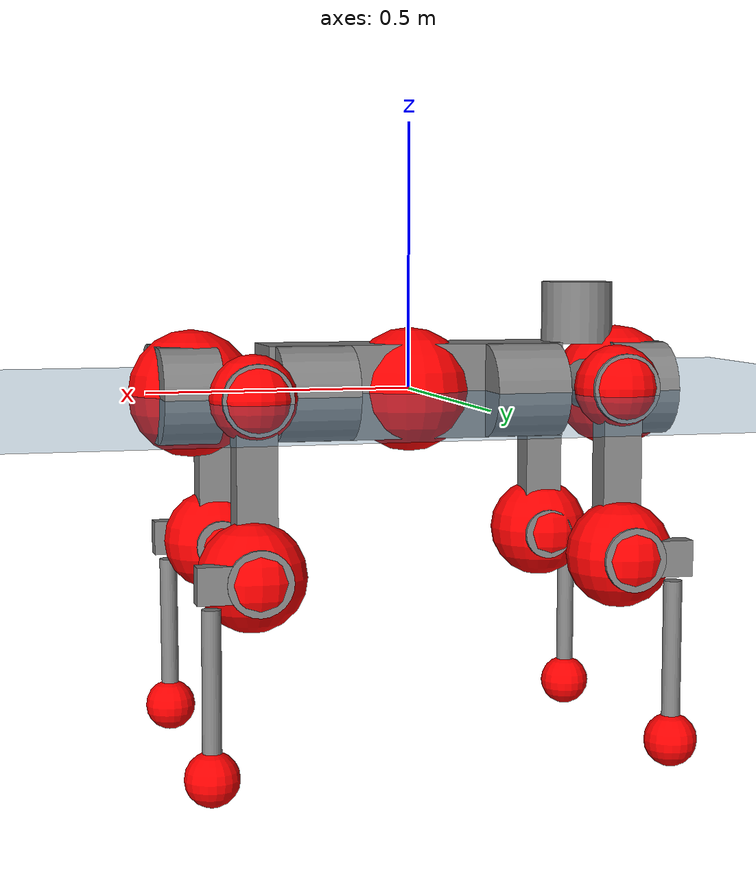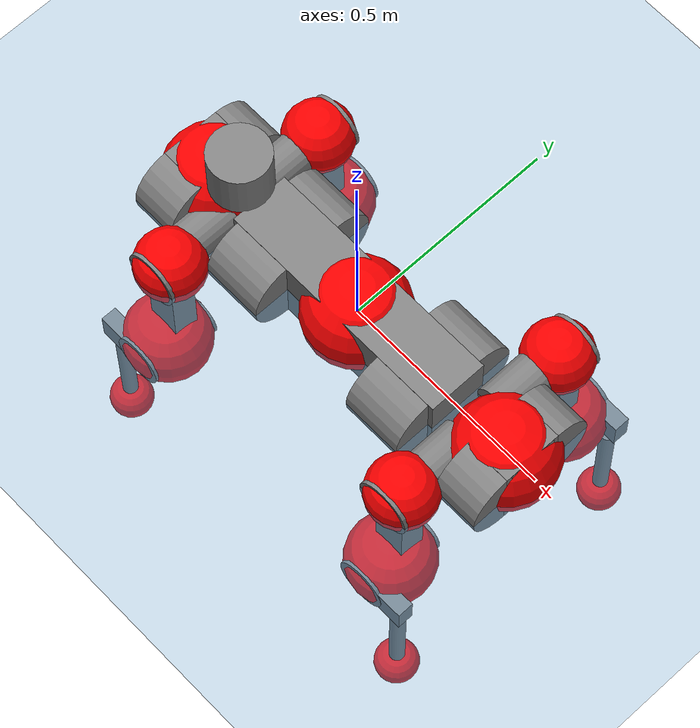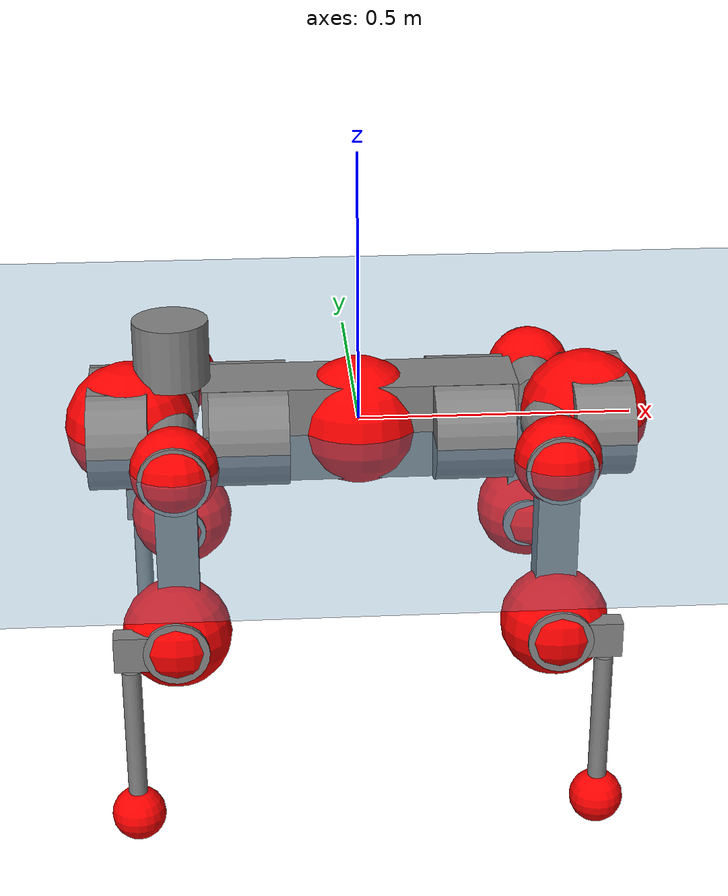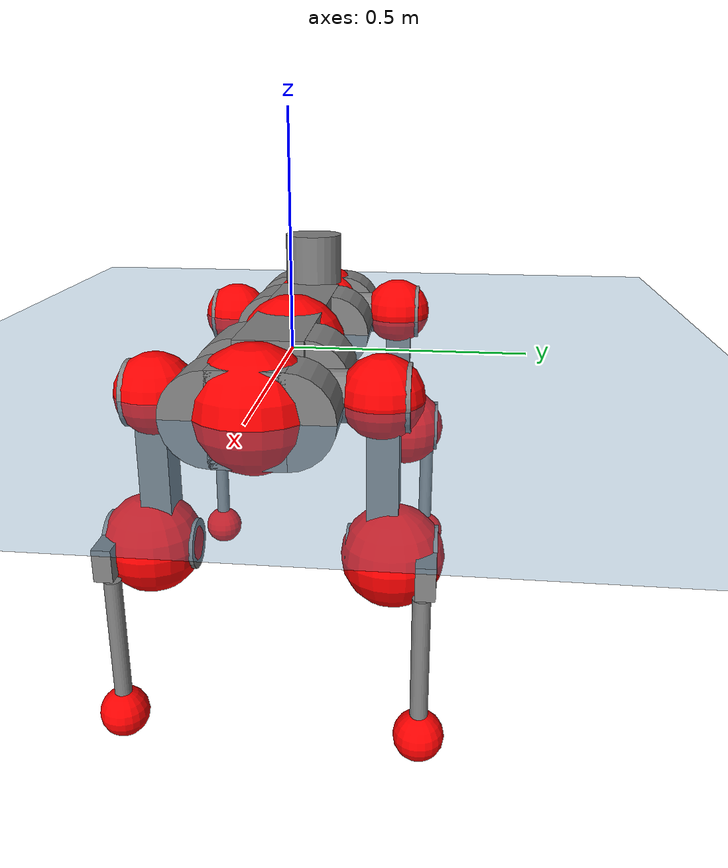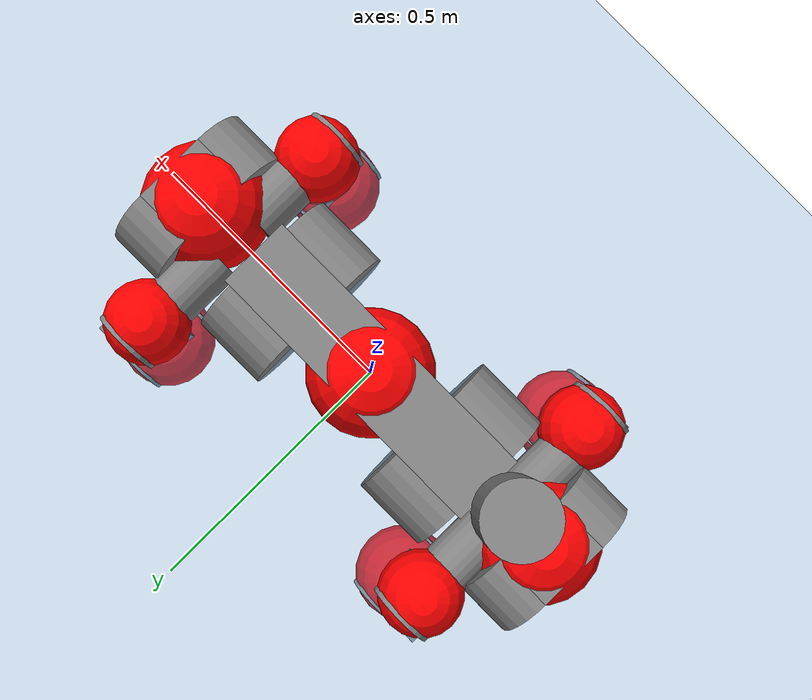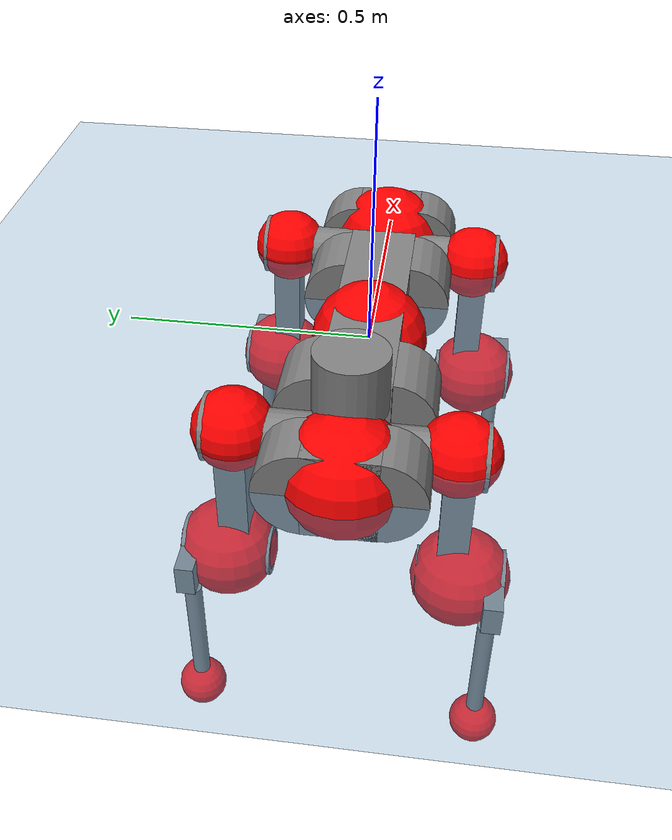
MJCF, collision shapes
<mujoco model="anymal_c">
  <compiler angle="radian" assetdir="assets" balanceinertia="true" inertiafromgeom="false"/>

  <option timestep="0.005" density="1.2" viscosity="2e-05"/>

  <size nkey="1"/>

  <visual>
    <quality shadowsize="8192"/>
    <map shadowclip="0.5"/>
  </visual>

  <default>
    <default class="/">
      <material specular="0" shininess="0.25"/>
      <geom contype="0" conaffinity="0" group="1" solref="-1000 -80"/>
      <site size="0.01 0.005 0.005" group="5"/>
      <general forcelimited="true" forcerange="-80 80" biastype="affine" gainprm="80" biasprm="0 -80 -2"/>
      <default class="anymal_c">
        <joint armature="0.01" damping="0.01" frictionloss="0.1"/>
        <default class="visual">
          <geom type="mesh" group="2"/>
          <default class="visual_zflip"/>
        </default>
        <default class="collision">
          <geom type="cylinder" group="3"/>
          <default class="foot">
            <geom size="0.03 0 0" type="sphere" condim="6" priority="1" friction="0.8 0.02 0.01" solimp="0.015 1 0.03"/>
          </default>
        </default>
      </default>
      <default class="reward_collision_sphere">
        <geom group="5" rgba="1 0 0 1"/>
      </default>
    </default>
  </default>

  <asset>
    <texture type="skybox" colorspace="auto" name="//unnamed_texture_0" builtin="gradient" rgb1="0.95 0.95 0.95" rgb2="0.95 0.95 0.95" width="100" height="600"/>
    <texture type="2d" colorspace="auto" name="texplane" builtin="checker" rgb1="0.345 0.575 0.748" rgb2="0.345 0.575 0.748" markrgb="1 1 1" width="512" height="512"/>
    <texture type="2d" colorspace="linear" name="base" file="base.png"/>
    <texture type="2d" colorspace="linear" name="top_shell" file="top_shell.png"/>
    <texture type="2d" colorspace="linear" name="bottom_shell" file="bottom_shell.png"/>
    <texture type="2d" colorspace="linear" name="remote" file="remote.png"/>
    <texture type="2d" colorspace="linear" name="hatch" file="hatch.png"/>
    <texture type="2d" colorspace="linear" name="handle" file="handle.png"/>
    <texture type="2d" colorspace="linear" name="face" file="face.png"/>
    <texture type="2d" colorspace="linear" name="battery" file="battery.png"/>
    <texture type="2d" colorspace="linear" name="lidar_cage" file="lidar_cage.png"/>
    <texture type="2d" colorspace="linear" name="depth_camera" file="depth_camera.png"/>
    <texture type="2d" colorspace="linear" name="wide_angle_camera" file="wide_angle_camera.png"/>
    <texture type="2d" colorspace="linear" name="lidar" file="lidar.png"/>
    <texture type="2d" colorspace="linear" name="drive" file="drive.png"/>
    <texture type="2d" colorspace="linear" name="hip_l" file="hip_l.png"/>
    <texture type="2d" colorspace="linear" name="shank_l" file="shank_l.png"/>
    <texture type="2d" colorspace="linear" name="foot" file="foot.png"/>
    <texture type="2d" colorspace="linear" name="thigh" file="thigh.png"/>
    <texture type="2d" colorspace="linear" name="shank_r" file="shank_r.png"/>
    <texture type="2d" colorspace="linear" name="hip_r" file="hip_r.png"/>
    <material name="MatPlane" class="/" texture="texplane" texuniform="true" texrepeat="2 2" specular="0.9" shininess="0.5"/>
    <material name="black_plastic" class="/" rgba="0.007 0.007 0.007 1"/>
    <material name="green" class="/" rgba="0.052 0.178 0.033 1"/>
    <material name="red" class="/" rgba="0.178 0.006 0.005 1"/>
    <material name="yellow" class="/" rgba="0.178 0.119 0.006 1"/>
    <material name="lwl" class="/" rgba="0.8 0.8 0.8 1"/>
    <material name="base" class="/" texture="base"/>
    <material name="top_shell" class="/" texture="top_shell"/>
    <material name="bottom_shell" class="/" texture="bottom_shell"/>
    <material name="hip_l" class="/" texture="hip_l"/>
    <material name="thigh" class="/" texture="thigh"/>
    <material name="shank_l" class="/" texture="shank_l"/>
    <material name="foot" class="/" texture="foot"/>
    <material name="hip_r" class="/" texture="hip_r"/>
    <material name="shank" class="/" texture="shank_r"/>
    <material name="hatch" class="/" texture="hatch"/>
    <material name="remote" class="/" texture="remote"/>
    <material name="handle" class="/" texture="handle"/>
    <material name="face" class="/" texture="face"/>
    <material name="depth_camera" class="/" texture="depth_camera"/>
    <material name="wide_angle_camera" class="/" texture="wide_angle_camera"/>
    <material name="battery" class="/" texture="battery"/>
    <material name="lidar_cage" class="/" texture="lidar_cage"/>
    <material name="lidar" class="/" texture="lidar"/>
    <material name="drive" class="/" texture="drive"/>
    <mesh name="base_0" class="/" file="base_0.obj"/>
    <mesh name="base_1" class="/" file="base_1.obj"/>
    <mesh name="base_2" class="/" file="base_2.obj"/>
    <mesh name="base_3" class="/" file="base_3.obj"/>
    <mesh name="base_4" class="/" file="base_4.obj"/>
    <mesh name="base_5" class="/" file="base_5.obj"/>
    <mesh name="top_shell" class="/" file="top_shell.obj"/>
    <mesh name="bottom_shell" class="/" file="bottom_shell.obj"/>
    <mesh name="remote" class="/" file="remote.obj"/>
    <mesh name="handle" class="/" file="handle.obj"/>
    <mesh name="face" class="/" file="face.obj"/>
    <mesh name="wide_angle_camera" class="/" file="wide_angle_camera.obj"/>
    <mesh name="depth_camera" class="/" file="depth_camera.obj"/>
    <mesh name="battery" class="/" file="battery.obj"/>
    <mesh name="lidar_cage" class="/" file="lidar_cage.obj"/>
    <mesh name="lidar" class="/" file="lidar.obj"/>
    <mesh name="drive" class="/" file="drive.obj"/>
    <mesh name="hip_l" class="/" file="hip_l.obj"/>
    <mesh name="thigh" class="/" file="thigh.obj"/>
    <mesh name="shank_l" class="/" file="shank_l.obj"/>
    <mesh name="foot" class="/" file="foot.obj"/>
    <mesh name="hip_r" class="/" file="hip_r.obj"/>
    <mesh name="hatch" class="/" file="hatch.obj"/>
    <mesh name="shank_r" class="/" file="shank_r.obj"/>
  </asset>

  <worldbody>
    <geom name="floor" class="/" size="100 100 0.125" type="plane" group="0" material="MatPlane"/>
    <light name="toplight_shadow" class="/" pos="0 0 5" dir="0.0990148 0.0990148 -0.990148" type="directional" ambient="0.04 0.04 0.04" diffuse="0.55 0.55 0.55" specular="0.12 0.12 0.12"/>
    <light name="toplight_fill" class="/" pos="0 0 5" dir="0.0990148 0.0990148 -0.990148" type="directional" castshadow="false" ambient="0.04 0.04 0.04" diffuse="0.3 0.3 0.3" specular="0.08 0.08 0.08"/>
    <body name="trunk" childclass="anymal_c" pos="6.11847e-05 5.0348e-05 -0.00119129" quat="0.999999 0.000536608 -0.00103056 -0.000178754">
      <inertial pos="0.0129947 0.00761747 0.0561237" quat="0.501343 0.500379 0.499519 0.498756" mass="16.1678" diaginertia="0.440866 0.44884 0.320151"/>
      <joint name="//unnamed_joint_0" type="free" armature="0" damping="0" frictionloss="0"/>
      <geom name="//unnamed_geom_1" class="visual" material="green" mesh="base_0"/>
      <geom name="//unnamed_geom_2" class="visual" material="yellow" mesh="base_1"/>
      <geom name="//unnamed_geom_3" class="visual" material="red" mesh="base_2"/>
      <geom name="//unnamed_geom_4" class="visual" material="black_plastic" mesh="base_3"/>
      <geom name="//unnamed_geom_5" class="visual" material="lwl" mesh="base_4"/>
      <geom name="//unnamed_geom_6" class="visual" material="base" mesh="base_5"/>
      <geom name="trunk_1" class="collision" size="0.283976 0.068546 0.0881306" type="box"/>
      <geom name="trunk_2" class="collision" size="0.0881306 0.0709941" pos="0.201143 0.0656257 0" quat="0.707107 0 0.707107 0"/>
      <geom name="trunk_3" class="collision" size="0.0881306 0.0709941" pos="-0.201143 0.0656257 0" quat="0.707107 0 0.707107 0"/>
      <geom name="trunk_4" class="collision" size="0.0881306 0.0709941" pos="0.201143 -0.0656257 0" quat="0.707107 0 0.707107 0"/>
      <geom name="trunk_5" class="collision" size="0.0881306 0.0709941" pos="-0.201143 -0.0656257 0" quat="0.707107 0 0.707107 0"/>
      <geom name="//unnamed_geom_12" class="visual" material="top_shell" mesh="top_shell"/>
      <geom name="//unnamed_geom_13" class="visual" material="bottom_shell" mesh="bottom_shell"/>
      <geom name="//unnamed_geom_14" class="visual" material="remote" mesh="remote"/>
      <geom name="//unnamed_geom_15" class="visual" material="handle" mesh="handle"/>
      <geom name="//unnamed_geom_16" class="visual" pos="0.383328 0 0" quat="1 0 0 0" material="face" mesh="face"/>
      <geom name="trunk_6" class="collision" size="0.0538576 0.068546 0.0881306" pos="0.434192 0 0" type="box"/>
      <geom name="//unnamed_geom_18" class="collision" size="0.0881306 0.0538576" pos="0.434192 0.0656257 0" quat="0.707107 0 0.707107 0"/>
      <geom name="//unnamed_geom_19" class="collision" size="0.0881306 0.0538576" pos="0.434192 -0.0656257 0" quat="0.707107 0 0.707107 0"/>
      <geom name="//unnamed_geom_20" class="visual" pos="0.426938 0 -0.0325456" quat="0.965926 0 0.258819 0" material="depth_camera" mesh="depth_camera"/>
      <geom name="//unnamed_geom_21" class="visual" pos="0.47442 0 0.0160985" material="wide_angle_camera" mesh="wide_angle_camera"/>
      <geom name="//unnamed_geom_22" class="visual_zflip" pos="-0.383328 0 0" quat="0 0 0 1" material="face" mesh="face"/>
      <geom name="trunk_7" class="collision" size="0.0538576 0.068546 0.0881306" pos="-0.434192 0 0" quat="0 0 0 1" type="box"/>
      <geom name="//unnamed_geom_24" class="collision" size="0.0881306 0.0538576" pos="-0.434192 -0.0656257 0" quat="0 -0.707107 0 0.707107"/>
      <geom name="//unnamed_geom_25" class="collision" size="0.0881306 0.0538576" pos="-0.434192 0.0656257 0" quat="0 -0.707107 0 0.707107"/>
      <geom name="//unnamed_geom_26" class="visual" pos="-0.426938 0 -0.0325456" quat="0 -0.258819 0 0.965926" material="depth_camera" mesh="depth_camera"/>
      <geom name="//unnamed_geom_27" class="visual_zflip" pos="-0.47442 0 0.0160985" quat="0 0 0 1" material="wide_angle_camera" mesh="wide_angle_camera"/>
      <geom name="//unnamed_geom_28" class="visual" material="battery" mesh="battery"/>
      <geom name="//unnamed_geom_29" class="visual" pos="0 0.0718551 0.0300954" quat="0.683013 -0.183013 0.183013 0.683013" material="depth_camera" mesh="depth_camera"/>
      <geom name="//unnamed_geom_30" class="visual" pos="0 -0.0718551 0.0300954" quat="0.683013 0.183013 0.183013 -0.683013" material="depth_camera" mesh="depth_camera"/>
      <geom name="//unnamed_geom_31" class="visual" pos="-0.336626 0 0.0790406" quat="1 0 0 0" material="lidar_cage" mesh="lidar_cage"/>
      <geom name="trunk_8" class="collision" size="0.068546 0.0587538" pos="-0.336626 0 0.143563"/>
      <geom name="//unnamed_geom_33" class="visual" pos="-0.336626 4.99499e-06 0.152919" quat="0.707107 0 0 -0.707107" material="lidar" mesh="lidar"/>
      <geom name="//unnamed_geom_34" class="visual" pos="0.277346 0.09755 -2.37831e-09" quat="0.258819 0.965926 0 0" material="drive" mesh="drive"/>
      <geom name="//unnamed_geom_35" class="visual" pos="0.277346 -0.09755 2.37831e-09" quat="0.258819 -0.965926 0 0" material="drive" mesh="drive"/>
      <geom name="//unnamed_geom_36" class="visual" pos="-0.277346 0.09755 2.37831e-09" quat="0 0 0.965926 -0.258819" material="drive" mesh="drive"/>
      <geom name="//unnamed_geom_37" class="visual" pos="-0.277346 -0.09755 -2.37831e-09" quat="0 0 -0.965926 -0.258819" material="drive" mesh="drive"/>
      <geom name="//unnamed_geom_38" class="visual" pos="0.107276 0 0.0785029" quat="1 0 0 0" material="hatch" mesh="hatch"/>
      <geom name="//unnamed_geom_39" class="reward_collision_sphere" size="0.117508"/>
      <geom name="//unnamed_geom_40" class="reward_collision_sphere" size="0.117508" pos="0.416158 0 0"/>
      <geom name="//unnamed_geom_41" class="reward_collision_sphere" size="0.117508" pos="-0.416158 0 0"/>
      <site name="imu" pos="0.186298 0.0102582 0.0932838" size="0.00979229"/>
      <camera name="track" pos="0 -1.87502 0" quat="0.707107 0.707107 0 0" mode="trackcom"/>
      <camera name="ego_camera" pos="0.416158 0 -0.0430153" quat="-0.5 -0.5 0.5 0.5"/>
      <body name="LF_HIP" pos="0.283503 0.104082 0.00273896" quat="0.259091 0.965853 0.000768876 2.85287e-05">
        <inertial pos="0.053129 -0.00829789 -0.0106834" quat="-0.125978 0.71084 -0.135877 0.678508" mass="2.84488" diaginertia="0.00456999 0.00437795 0.00534949"/>
        <joint name="LF_HAA" pos="0 0 0" axis="0.999909 0.00207061 0.0133634" stiffness="0.0237288" range="-0.706381 0.449129" armature="0.0107227" damping="0" frictionloss="0.121809"/>
        <geom name="//unnamed_geom_42" class="visual" pos="0 -0.000139905 2.29793e-05" quat="0.258819 -0.965926 0 0" material="hip_l" mesh="hip_l"/>
        <geom name="//unnamed_geom_43" class="visual" pos="0.0553953 -0.0673395 -0.0398983" quat="0.183013 -0.683013 0.683013 0.183013" material="drive" mesh="drive"/>
        <geom name="//unnamed_geom_44" class="collision" size="0.0489615 0.068546" pos="0.0553953 -0.0112124 -0.00742551" quat="-0.353553 -0.612372 0.612372 -0.353553"/>
        <body name="LF_THIGH" pos="0.0590463 -0.0775163 -0.0476503" quat="0.184974 -0.684825 0.680289 0.184405">
          <inertial pos="0.0307531 0.000249563 -0.267659" quat="0.993961 0.0203708 -0.0848901 0.066492" mass="3.00437" diaginertia="0.0201181 0.0238047 0.00583562"/>
          <joint name="LF_HFE" pos="0 0 0" axis="0.999999 0.000853698 -0.00132748" stiffness="0.0100347" range="-3.2947 3.04449" armature="0.00988698" damping="0" frictionloss="0.11605"/>
          <geom name="//unnamed_geom_45" class="visual" pos="-0.000252959 -3.98604e-07 0" quat="0.707107 0 0 -0.707107" material="thigh" mesh="thigh"/>
          <geom name="//unnamed_geom_46" class="collision" size="0.0636499 0.0391692" pos="0.0369918 0 0" quat="0.5 0.5 -0.5 -0.5"/>
          <geom name="//unnamed_geom_47" class="collision" size="0.0367211 0.0293769 0.138379" pos="0.0277439 0 -0.151967" quat="0.707107 0 0 -0.707107" type="box"/>
          <geom name="//unnamed_geom_48" class="visual" pos="0.092757 0 -0.306484" quat="1 0 0 0" material="drive" mesh="drive"/>
          <geom name="//unnamed_geom_49" class="collision" size="0.0489615 0.068546" pos="0.0280213 0 -0.306484" quat="0.707107 0 0.707107 0"/>
          <geom name="//unnamed_geom_50" class="reward_collision_sphere" size="0.0783383" pos="0.0231199 0 0"/>
          <body name="LF_SHANK" pos="0.0923806 -0.00808047 -0.310017" quat="1 -0.000148709 -7.11383e-05 1.71538e-05">
            <inertial pos="0.00422004 -0.0567937 -0.0840487" quat="0.992978 -0.113654 -0.00277091 -0.0327032" mass="0.551689" diaginertia="0.00739141 0.00675481 0.00160164"/>
            <joint name="LF_KFE" pos="0 0 0" axis="0.999933 -0.0100814 0.00566683" stiffness="0.036953" range="-3.23413 3.16311" armature="0.00933527" damping="0.0201279" frictionloss="0.104869"/>
            <geom name="//unnamed_geom_51" class="visual" pos="-8.24843e-05 -0.000439811 0" quat="0.707107 0 0 -0.707107" material="shank_l" mesh="shank_l"/>
            <geom name="LF_kfe_act" class="collision" size="0.0587538 0.0195846" pos="0.0184959 0 0" quat="0.5 0.5 -0.5 -0.5"/>
            <geom name="//unnamed_geom_53" class="collision" size="0.0563047 0.033049 0.0186054" pos="0.0184959 -0.0539059 0" quat="0.5 0.5 -0.5 -0.5" type="box"/>
            <geom name="//unnamed_geom_54" class="visual" pos="0.0120686 -0.0825957 -0.363447" quat="0.382683 0 0 -0.92388" material="foot" mesh="foot"/>
            <geom name="LF_calf" class="collision" size="0.0171365 0.138318" pos="0.0120686 -0.082454 -0.181723" quat="0.707107 0 0 -0.707107"/>
            <geom name="LF_foot" class="foot" size="0.0323582" pos="0.0120686 -0.082454 -0.339251" quat="0.707107 0 0 -0.707107"/>
            <geom name="//unnamed_geom_57" class="reward_collision_sphere" size="0.0979229" pos="-0.0462398 0 0"/>
            <geom name="//unnamed_geom_58" class="reward_collision_sphere" size="0.0489615" pos="0.0120686 -0.082454 -0.339251"/>
            <site name="LF_foot" class="foot" pos="0.0120686 -0.082454 -0.339251" quat="0.707107 0 0 -0.707107" size="0.00979229"/>
          </body>
        </body>
      </body>
      <body name="RF_HIP" pos="0.286447 -0.0968216 -0.000560096" quat="0.258744 -0.965946 -5.9144e-05 0.000126373">
        <inertial pos="0.0569288 0.0252771 -0.0041918" quat="0.0917066 0.683771 0.105914 0.716121" mass="2.5839" diaginertia="0.00434302 0.00322273 0.00515167"/>
        <joint name="RF_HAA" pos="0 0 0" axis="0.999455 0.0327609 -0.00401187" range="-0.470133 0.721954" armature="0.00969603" damping="0.0351339" frictionloss="0.0908281"/>
        <geom name="//unnamed_geom_59" class="visual" pos="0 0.000139904 2.29793e-05" quat="0.258819 0.965926 0 0" material="hip_r" mesh="hip_r"/>
        <geom name="//unnamed_geom_60" class="visual" pos="0.0553953 0.0673395 -0.0398983" quat="0.183013 0.683013 0.683013 -0.183013" material="drive" mesh="drive"/>
        <geom name="//unnamed_geom_61" class="collision" size="0.0489615 0.068546" pos="0.0553953 0.0112124 -0.00742551" quat="-0.353553 0.612372 0.612372 0.353553"/>
        <body name="RF_THIGH" pos="0.0520854 0.0711541 -0.0378503" quat="0.184714 0.683731 0.682654 -0.179934">
          <inertial pos="0.0196555 0.000643197 -0.260512" quat="0.991327 0.00592277 -0.0788441 0.104968" mass="2.62735" diaginertia="0.021386 0.0233207 0.00530118"/>
          <joint name="RF_HFE" pos="0 0 0" axis="0.999942 -0.0100771 -0.00368228" stiffness="0.0187357" range="-3.16429 3.1268" armature="0.0118411" damping="0.00980661" frictionloss="0.0880078"/>
          <geom name="//unnamed_geom_62" class="visual" pos="-0.000252959 -3.98604e-07 0" quat="0.707107 0 0 -0.707107" material="thigh" mesh="thigh"/>
          <geom name="//unnamed_geom_63" class="collision" size="0.0636499 0.0391692" pos="0.0369918 0 0" quat="0.5 0.5 0.5 0.5"/>
          <geom name="//unnamed_geom_64" class="collision" size="0.0367211 0.0293769 0.138379" pos="0.0277439 0 -0.151967" quat="0.707107 0 0 0.707107" type="box"/>
          <geom name="//unnamed_geom_65" class="visual" pos="0.092757 0 -0.306484" quat="1 0 0 0" material="drive" mesh="drive"/>
          <geom name="//unnamed_geom_66" class="collision" size="0.0489615 0.068546" pos="0.0280213 0 -0.306484" quat="0.707107 0 0.707107 0"/>
          <geom name="//unnamed_geom_67" class="reward_collision_sphere" size="0.0783383" pos="0.0231199 0 0"/>
          <body name="RF_SHANK" pos="0.0965571 0.000954579 -0.305597" quat="0.999998 -0.000589552 0.00146102 0.000994396">
            <inertial pos="0.0112187 0.0577144 -0.0868674" quat="0.989613 0.142305 -0.0163693 -0.012105" mass="0.483806" diaginertia="0.00617568 0.00634891 0.00149392"/>
            <joint name="RF_KFE" pos="0 0 0" axis="0.999997 0.00139981 -0.00176154" stiffness="0.043132" range="-2.95901 3.22121" armature="0.00626339" damping="0" frictionloss="0.0861878"/>
            <geom name="//unnamed_geom_68" class="visual" pos="-8.24839e-05 0.00043981 0" quat="0.707107 0 0 0.707107" material="shank" mesh="shank_r"/>
            <geom name="RF_kfe_act" class="collision" size="0.0587538 0.0195846" pos="0.0184959 0 0" quat="0.5 0.5 0.5 0.5"/>
            <geom name="//unnamed_geom_70" class="collision" size="0.0563047 0.033049 0.0186054" pos="0.0184959 0.0539059 0" quat="0.5 0.5 0.5 0.5" type="box"/>
            <geom name="//unnamed_geom_71" class="visual" pos="0.0120686 0.0825957 -0.363447" quat="0.382683 0 0 0.92388" material="foot" mesh="foot"/>
            <geom name="RF_calf" class="collision" size="0.0171365 0.138318" pos="0.0120686 0.082454 -0.181723" quat="0.707107 0 0 0.707107"/>
            <geom name="RF_foot" class="foot" size="0.0359611" pos="0.0120686 0.082454 -0.339251" quat="0.707107 0 0 0.707107"/>
            <geom name="//unnamed_geom_74" class="reward_collision_sphere" size="0.0979229" pos="-0.0462398 0 0"/>
            <geom name="//unnamed_geom_75" class="reward_collision_sphere" size="0.0489615" pos="0.0120686 0.082454 -0.339251"/>
            <site name="RF_foot" class="foot" pos="0.0120686 0.082454 -0.339251" quat="0.707107 0 0 0.707107" size="0.00979229"/>
          </body>
        </body>
      </body>
      <body name="LH_HIP" pos="-0.285213 0.102865 0.0074178" quat="0.000212709 -0.000626903 0.965848 -0.259107">
        <inertial pos="0.0530923 0.00921169 0.000550207" quat="0.143981 0.695987 0.143723 0.688633" mass="2.32684" diaginertia="0.0030294 0.00314019 0.00436908"/>
        <joint name="LH_HAA" pos="0 0 0" axis="0.999461 0.027809 0.0174546" stiffness="0.00995535" range="-0.525924 0.695876" armature="0.00859922" damping="0.0472524" frictionloss="0.100379"/>
        <geom name="//unnamed_geom_76" class="visual" pos="0 0.000139904 2.29793e-05" quat="-0.258819 -0.965926 0 0" material="hip_r" mesh="hip_r"/>
        <geom name="//unnamed_geom_77" class="visual" pos="0.0553953 0.0673395 -0.0398983" quat="0.183013 0.683013 0.683013 -0.183013" material="drive" mesh="drive"/>
        <geom name="//unnamed_geom_78" class="collision" size="0.0489615 0.068546" pos="0.0553953 0.0112124 -0.00742551" quat="-0.353553 0.612372 0.612372 0.353553"/>
        <body name="LH_THIGH" pos="0.053255 0.0703669 -0.0474898" quat="0.183383 0.682713 0.683349 -0.182505">
          <inertial pos="0.0391633 -0.00105336 -0.254719" quat="0.993087 -0.00637785 -0.0826817 0.0830755" mass="3.14711" diaginertia="0.0245859 0.0215637 0.00629987"/>
          <joint name="LH_HFE" pos="0 0 0" axis="0.999983 0.00490035 0.00318928" range="-3.07903 3.23539" armature="0.0100949" damping="0.0355398" frictionloss="0.0995115"/>
          <geom name="//unnamed_geom_79" class="visual" pos="-0.000252959 -3.98604e-07 0" quat="0.707107 0 0 -0.707107" material="thigh" mesh="thigh"/>
          <geom name="//unnamed_geom_80" class="collision" size="0.0636499 0.0391692" pos="0.0369918 0 0" quat="0.5 0.5 -0.5 -0.5"/>
          <geom name="//unnamed_geom_81" class="collision" size="0.0367211 0.0293769 0.138379" pos="0.0277439 0 -0.151967" quat="0.707107 0 0 -0.707107" type="box"/>
          <geom name="//unnamed_geom_82" class="visual" pos="0.092757 0 -0.306484" quat="1 0 0 0" material="drive" mesh="drive"/>
          <geom name="//unnamed_geom_83" class="collision" size="0.0489615 0.068546" pos="0.0280213 0 -0.306484" quat="0.707107 0 0.707107 0"/>
          <geom name="//unnamed_geom_84" class="reward_collision_sphere" size="0.0783383" pos="0.0231199 0 0"/>
          <body name="LH_SHANK" pos="0.0947719 -0.00159935 -0.305801" quat="1 -1.43002e-05 1.70409e-05 -9.50671e-07">
            <inertial pos="0.00197681 0.0495809 -0.0858103" quat="0.995145 0.0970017 0.00459583 0.0160169" mass="0.480538" diaginertia="0.00631399 0.00523816 0.0013801"/>
            <joint name="LH_KFE" pos="0 0 0" axis="0.999948 -4.0352e-05 -0.0102313" range="-3.28961 3.24315" armature="0.00557838" damping="0" frictionloss="0.132019"/>
            <geom name="//unnamed_geom_85" class="visual" pos="-8.24839e-05 0.00043981 0" quat="-0.707107 0 0 -0.707107" material="shank" mesh="shank_r"/>
            <geom name="LH_kfe_act" class="collision" size="0.0587538 0.0195846" pos="0.0184959 0 0" quat="0.5 0.5 -0.5 -0.5"/>
            <geom name="//unnamed_geom_87" class="collision" size="0.0563047 0.033049 0.0186054" pos="0.0184959 0.0539059 0" quat="0.5 0.5 -0.5 -0.5" type="box"/>
            <geom name="//unnamed_geom_88" class="visual" pos="0.0120686 0.0825957 -0.363447" quat="-0.382683 0 0 -0.92388" material="foot" mesh="foot"/>
            <geom name="LH_calf" class="collision" size="0.0171365 0.138318" pos="0.0120686 0.082454 -0.181723" quat="0.707107 0 0 -0.707107"/>
            <geom name="LH_foot" class="foot" size="0.027746" pos="0.0120686 0.082454 -0.339251" quat="0.707107 0 0 -0.707107"/>
            <geom name="//unnamed_geom_91" class="reward_collision_sphere" size="0.0979229" pos="-0.0462398 0 0"/>
            <geom name="//unnamed_geom_92" class="reward_collision_sphere" size="0.0489615" pos="0.0120686 0.082454 -0.339251"/>
            <site name="LH_foot" class="foot" pos="0.0120686 0.082454 -0.339251" quat="0.707107 0 0 -0.707107" size="0.00979229"/>
          </body>
        </body>
      </body>
      <body name="RH_HIP" pos="-0.288048 -0.0959698 -0.00185451" quat="-0.000119522 0.00052858 -0.965993 -0.258566">
        <inertial pos="0.056413 -0.0177467 0.000426273" quat="-0.0794126 0.717607 -0.110755 0.682984" mass="2.69159" diaginertia="0.00446788 0.00409288 0.0053689"/>
        <joint name="RH_HAA" pos="0 0 0" axis="0.999094 0.000968924 0.0425512" stiffness="0.00616264" range="-0.559275 0.424329" armature="0.0107151" damping="0.0250828" frictionloss="0.100391"/>
        <geom name="//unnamed_geom_93" class="visual" pos="0 -0.000139905 2.29793e-05" quat="-0.258819 0.965926 0 0" material="hip_l" mesh="hip_l"/>
        <geom name="//unnamed_geom_94" class="visual" pos="0.0553953 -0.0673395 -0.0398983" quat="-0.183013 0.683013 -0.683013 -0.183013" material="drive" mesh="drive"/>
        <geom name="//unnamed_geom_95" class="collision" size="0.0489615 0.068546" pos="0.0553953 -0.0112124 -0.00742551" quat="0.353553 0.612372 -0.612372 0.353553"/>
        <body name="RH_THIGH" pos="0.0458038 -0.0694134 -0.0371395" quat="-0.185216 0.682249 -0.682479 -0.185617">
          <inertial pos="0.0307313 -0.00389214 -0.264001" quat="0.99315 -0.00520372 -0.0806749 0.0843678" mass="3.2683" diaginertia="0.0232185 0.0223251 0.00623546"/>
          <joint name="RH_HFE" pos="0 0 0" axis="0.999978 0.000460192 0.00666031" range="-3.22065 3.15525" armature="0.00933732" damping="0" frictionloss="0.0948813"/>
          <geom name="//unnamed_geom_96" class="visual" pos="-0.000252959 -3.98604e-07 0" quat="0.707107 0 0 -0.707107" material="thigh" mesh="thigh"/>
          <geom name="//unnamed_geom_97" class="collision" size="0.0636499 0.0391692" pos="0.0369918 0 0" quat="0.5 0.5 0.5 0.5"/>
          <geom name="//unnamed_geom_98" class="collision" size="0.0367211 0.0293769 0.138379" pos="0.0277439 0 -0.151967" quat="0.707107 0 0 0.707107" type="box"/>
          <geom name="//unnamed_geom_99" class="visual" pos="0.092757 0 -0.306484" quat="1 0 0 0" material="drive" mesh="drive"/>
          <geom name="//unnamed_geom_100" class="collision" size="0.0489615 0.068546" pos="0.0280213 0 -0.306484" quat="0.707107 0 0.707107 0"/>
          <geom name="//unnamed_geom_101" class="reward_collision_sphere" size="0.0783383" pos="0.0231199 0 0"/>
          <body name="RH_SHANK" pos="0.0930181 -0.00660282 -0.303789" quat="0.99999 0.00123346 0.00199736 -0.00368491">
            <inertial pos="-0.00169163 -0.0550846 -0.0870441" quat="0.989635 -0.140293 0.0173276 -0.025297" mass="0.531296" diaginertia="0.00696975 0.00666949 0.00166659"/>
            <joint name="RH_KFE" pos="0 0 0" axis="0.999964 0.000785575 0.00844256" range="-3.10969 2.97452" armature="0.00966439" damping="0" frictionloss="0.0865549"/>
            <geom name="//unnamed_geom_102" class="visual" pos="-8.24843e-05 -0.000439811 0" quat="0.707107 0 0 -0.707107" material="shank_l" mesh="shank_l"/>
            <geom name="RH_kfe_act" class="collision" size="0.0587538 0.0195846" pos="0.0184959 0 0" quat="0.5 0.5 0.5 0.5"/>
            <geom name="//unnamed_geom_104" class="collision" size="0.0563047 0.033049 0.0186054" pos="0.0184959 -0.0539059 0" quat="0.5 0.5 0.5 0.5" type="box"/>
            <geom name="//unnamed_geom_105" class="visual" pos="0.0120686 -0.0825957 -0.363447" quat="0.382683 0 0 -0.92388" material="foot" mesh="foot"/>
            <geom name="RH_calf" class="collision" size="0.0171365 0.138318" pos="0.0120686 -0.082454 -0.181723" quat="0.707107 0 0 0.707107"/>
            <geom name="RH_foot" class="foot" size="0.0346722" pos="0.0120686 -0.082454 -0.339251" quat="0.707107 0 0 0.707107"/>
            <geom name="//unnamed_geom_108" class="reward_collision_sphere" size="0.0979229" pos="-0.0462398 0 0"/>
            <geom name="//unnamed_geom_109" class="reward_collision_sphere" size="0.0489615" pos="0.0120686 -0.082454 -0.339251"/>
            <site name="RH_foot" class="foot" pos="0.0120686 -0.082454 -0.339251" quat="0.707107 0 0 0.707107" size="0.00979229"/>
          </body>
        </body>
      </body>
    </body>
  </worldbody>

  <contact>
    <pair class="/" geom1="floor" geom2="LF_foot" name="//unnamed_contact_0"/>
    <pair class="/" geom1="floor" geom2="RF_foot" name="//unnamed_contact_1"/>
    <pair class="/" geom1="floor" geom2="LH_foot" name="//unnamed_contact_2"/>
    <pair class="/" geom1="floor" geom2="RH_foot" name="//unnamed_contact_3"/>
  </contact>

  <actuator>
    <general name="LF_HAA" class="/" joint="LF_HAA" forcerange="-96.7972 96.7972" gainprm="85.526" biasprm="0 -85.526 -2.11746"/>
    <general name="LF_HFE" class="/" joint="LF_HFE" forcerange="-105.682 105.682" gainprm="85.526" biasprm="0 -85.526 -2.11746"/>
    <general name="LF_KFE" class="/" joint="LF_KFE" forcerange="-81.55 81.55" gainprm="85.526" biasprm="0 -85.526 -2.11746"/>
    <general name="RF_HAA" class="/" joint="RF_HAA" forcerange="-85.7389 85.7389" gainprm="85.526" biasprm="0 -85.526 -2.11746"/>
    <general name="RF_HFE" class="/" joint="RF_HFE" forcerange="-62.7272 62.7272" gainprm="85.526" biasprm="0 -85.526 -2.11746"/>
    <general name="RF_KFE" class="/" joint="RF_KFE" forcerange="-76.4257 76.4257" gainprm="85.526" biasprm="0 -85.526 -2.11746"/>
    <general name="LH_HAA" class="/" joint="LH_HAA" forcerange="-79.3564 79.3564" gainprm="85.526" biasprm="0 -85.526 -2.11746"/>
    <general name="LH_HFE" class="/" joint="LH_HFE" forcerange="-95.223 95.223" gainprm="85.526" biasprm="0 -85.526 -2.11746"/>
    <general name="LH_KFE" class="/" joint="LH_KFE" forcerange="-74.6752 74.6752" gainprm="85.526" biasprm="0 -85.526 -2.11746"/>
    <general name="RH_HAA" class="/" joint="RH_HAA" forcerange="-75.1855 75.1855" gainprm="85.526" biasprm="0 -85.526 -2.11746"/>
    <general name="RH_HFE" class="/" joint="RH_HFE" forcerange="-56.3456 56.3456" gainprm="85.526" biasprm="0 -85.526 -2.11746"/>
    <general name="RH_KFE" class="/" joint="RH_KFE" forcerange="-79.8838 79.8838" gainprm="85.526" biasprm="0 -85.526 -2.11746"/>
  </actuator>

  <sensor>
    <gyro site="imu" name="imu_angular_velocity"/>
    <velocimeter site="imu" name="imu_linear_velocity"/>
    <framelinvel objtype="site" objname="LF_foot" name="LF_foot_global_linear_velocity"/>
    <framelinvel objtype="site" objname="RF_foot" name="RF_foot_global_linear_velocity"/>
    <framelinvel objtype="site" objname="LH_foot" name="LH_foot_global_linear_velocity"/>
    <framelinvel objtype="site" objname="RH_foot" name="RH_foot_global_linear_velocity"/>
  </sensor>

  <keyframe>
    <key name="home" qpos="0 0 0.55 1 0 0 0 0 0.4 -0.8 0 -0.4 0.8 0 -0.4 0.8 0 0.4 -0.8"/>
  </keyframe>
</mujoco>
